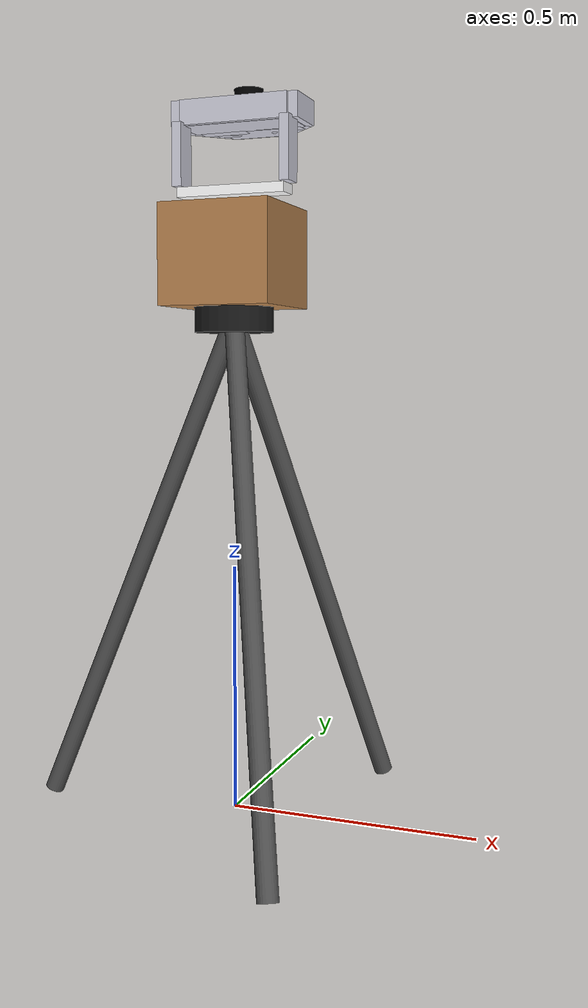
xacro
<?xml version="1.0"?>
<robot name="motor_test" xmlns:xacro="http://www.ros.org/wiki/xacro">

  <!-- Tripod -->
  <link name="world"/>

  <link name="tripod_hub">
    <visual>
      <geometry>
        <cylinder radius="0.08" length="0.05"/>
      </geometry>
      <material name="black_matte">
        <color rgba="0.1 0.1 0.1 1.0"/>
      </material>
    </visual>
    <collision>
      <geometry>
        <cylinder radius="0.08" length="0.05"/>
      </geometry>
    </collision>
    <inertial>
      <mass value="2.0"/>
      <inertia ixx="0.01" ixy="0" ixz="0" iyy="0.01" iyz="0" izz="0.01"/>
    </inertial>
  </link>

  <joint name="world_to_hub" type="fixed">
    <parent link="world"/>
    <child link="tripod_hub"/>
    <origin xyz="0 0 1.0" rpy="0 0 0"/>
  </joint>

  <xacro:macro name="tripod_leg" params="suffix yaw_angle">
    <link name="leg_${suffix}">
      <visual>
        <origin xyz="0 0 -0.55" rpy="0 0 0"/>
        <geometry>
          <cylinder radius="0.02" length="1.1"/>
        </geometry>
        <material name="tripod_gray">
          <color rgba="0.3 0.3 0.3 1.0"/>
        </material>
      </visual>
      <collision>
        <origin xyz="0 0 -0.55" rpy="0 0 0"/>
        <geometry>
          <cylinder radius="0.02" length="1.1"/>
        </geometry>
      </collision>
      <inertial>
        <mass value="1.0"/>
        <inertia ixx="0.1" ixy="0" ixz="0" iyy="0.1" iyz="0" izz="0.001"/>
      </inertial>
    </link>

    <joint name="hub_to_leg_${suffix}" type="fixed">
      <parent link="tripod_hub"/>
      <child link="leg_${suffix}"/>
      <origin xyz="0 0 0" rpy="0 0.4 ${yaw_angle}"/>
    </joint>
  </xacro:macro>

  <xacro:tripod_leg suffix="1" yaw_angle="0.0"/>
  <xacro:tripod_leg suffix="2" yaw_angle="2.0944"/>
  <xacro:tripod_leg suffix="3" yaw_angle="4.1888"/>

  <joint name="tripod_to_base" type="fixed">
    <parent link="tripod_hub"/>
    <child link="base_link"/>
    <origin xyz="0 0 0.125" rpy="0 0 0"/>
  </joint>

  <!-- Base box -->
  <link name="base_link">
    <inertial>
      <origin xyz="0 0 0" rpy="0 0 0"/>
      <mass value="10.0"/>
      <inertia ixx="0.5" ixy="0" ixz="0" iyy="0.5" iyz="0" izz="0.5"/>
    </inertial>

    <visual>
      <geometry>
        <box size="0.2286 0.2286 0.2"/> <!-- 9x9 inches -->
      </geometry>
      <origin xyz="0 0 0" rpy="0 0 0"/>
      <material name="wood">
        <color rgba="0.7 0.5 0.3 1.0"/>
      </material>
    </visual>

    <collision>
      <geometry>
        <box size="0.2286 0.2286 0.2"/>
      </geometry>
      <origin xyz="0 0 0" rpy="0 0 0"/>
    </collision>
  </link>

  <!-- Rotating horizontal bar -->
  <link name="bar_link">
    <inertial>
      <origin xyz="0 0 0" rpy="0 0 0"/>
      <mass value="1.0"/>
      <inertia ixx="0.01" ixy="0" ixz="0" iyy="0.01" iyz="0" izz="0.01"/>
    </inertial>
    <visual>
      <geometry>
        <box size="0.2286 0.05 0.02"/>
      </geometry>
      <origin xyz="0 0 0" rpy="0 0 0"/>
      <material name="white">
        <color rgba="1 1 1 1"/>
      </material>
    </visual>
  </link>

  <!-- Revolute joint connecting base to bar -->
  <joint name="base_to_bar" type="revolute">
    <parent link="base_link"/>
    <child link="bar_link"/>
    <origin xyz="0 0 0.13" rpy="0 0 0"/>
    <axis xyz="0 0 1"/>
    <limit lower="-3.14" upper="3.14" effort="500" velocity="1.0"/>
  </joint>

  <!--      LEFT vertical bar          -->
  <link name="left_vertical_bar">
    <inertial>
      <origin xyz="0 0 0" rpy="0 0 0"/>
      <mass value="0.5"/>
      <inertia ixx="0.001" ixy="0" ixz="0" iyy="0.001" iyz="0" izz="0.001"/>
    </inertial>
    <visual>
      <geometry>
        <box size="0.02 0.05 0.127"/>  <!-- width, depth, height -->
      </geometry>
      <origin xyz="0 0 0" rpy="0 0 0"/>
      <material name="metal_gray">
        <color rgba="0.8 0.8 0.85 1.0"/>
      </material>
    </visual>
  </link>

  <joint name="bar_to_left_vertical" type="fixed">
    <parent link="bar_link"/>
    <child link="left_vertical_bar"/>
    <!-- Position at left end of the bar (x = -0.125), bar is 0.02 m thick in z -->
    <origin xyz="-0.1143 0 0.076" rpy="0 0 0"/>
  </joint>

  <!--      RIGHT vertical bar         -->
  <link name="right_vertical_bar">
    <inertial>
      <origin xyz="0 0 0" rpy="0 0 0"/>
      <mass value="0.5"/>
      <inertia ixx="0.001" ixy="0" ixz="0" iyy="0.001" iyz="0" izz="0.001"/>
    </inertial>
    <visual>
      <geometry>
        <box size="0.02 0.05 0.127"/>
      </geometry>
      <origin xyz="0 0 0" rpy="0 0 0"/>
      <material name="metal_gray">
        <color rgba="0.8 0.8 0.85 1.0"/>
      </material>
    </visual>
  </link>

  <joint name="bar_to_right_vertical" type="fixed">
    <parent link="bar_link"/>
    <child link="right_vertical_bar"/>
    <!-- Position at right end of the bar (x = +0.125) -->
    <origin xyz="0.1143 0 0.076" rpy="0 0 0"/>
  </joint>

  <link name="sheet">
    <inertial>
      <origin xyz="0 0 0" rpy="0 0 0"/>
      <mass value="0.2"/>
      <inertia ixx="0.0001" ixy="0" ixz="0" iyy="0.0001" iyz="0" izz="0.0001"/>
    </inertial>
    <visual>
      <origin xyz="0 0.045 0.02" rpy="0 0 0"/>
      <geometry><box size="0.24 0.09 0.002"/></geometry>
      <material name="metal_gray">
        <color rgba="0.8 0.8 0.85 1.0"/>
      </material>
    </visual>

    <visual>
      <origin xyz="0 0.125 0.02" rpy="0 0 0"/>
      <geometry><box size="0.13 0.07 0.002"/></geometry>
      <material name="metal_gray"/>
    </visual>

    <!-- Right side triangle -->
    <visual>
      <origin xyz="-0.06 0.125 0.02" rpy="0 0 0"/>
      <geometry><box size="0.05 0.02 0.002"/></geometry>
      <material name="metal_gray"/>
    </visual>

    <visual>
      <origin xyz="-0.06 0.1 0.02" rpy="0 0 0"/>
      <geometry><box size="0.1 0.03 0.002"/></geometry>
      <material name="metal_gray"/>
    </visual>

    <!-- Left side triangle -->
    <visual>
      <origin xyz="0.06 0.125 0.02" rpy="0 0 0"/>
      <geometry><box size="0.05 0.02 0.002"/></geometry>
      <material name="metal_gray"/>
    </visual>

    <visual>
      <origin xyz="0.06 0.1 0.02" rpy="0 0 0"/>
      <geometry><box size="0.1 0.03 0.002"/></geometry>
      <material name="metal_gray"/>
    </visual>
  </link>

  <joint name="sheet_to_semi_octagon" type="fixed">
    <parent link="semi_octagon"/>
    <child link="sheet"/>
    <origin xyz="0 0 -0.045" rpy="0 0 0"/>
  </joint>

  <!-- Semi-Octagon -->

  <!-- Revolute joint: bar_link -> semi_octagon (allows the semi-octagon to pitch up/down) -->
  <joint name="bar_to_semi_octagon" type="revolute">
    <parent link="bar_link"/>
    <child link="semi_octagon"/>
    <origin xyz="0 0 0.16" rpy="0 0 0"/>
    <dynamics damping="1.0" friction="1.0"/>
    <!-- pitch axis (rotate up/down) -->
    <axis xyz="1 0 0"/>
    <limit lower="-1.57" upper="1.57" effort="500" velocity="1.0"/>
  </joint>

  <!-- Semi-octagon link (made from 6 thin plates) -->
  <link name="semi_octagon">
    <!-- inertial (simple placeholder; tune mass/inertia for physics accuracy) -->
    <inertial>
      <origin xyz="0 0 0" rpy="0 0 0"/>
      <mass value="0.5"/>
      <inertia ixx="0.001" ixy="0" ixz="0" iyy="0.001" iyz="0" izz="0.001"/>
    </inertial>

    <!-- 1) Long base side (centered) -->
    <visual>
      <origin xyz="0 0 0" rpy="0 0 0"/>
      <!-- size: length along X = distance between vertical bars (0.25), small thickness in Z -->
      <geometry><box size="0.2286 0.02 0.05"/></geometry>
      <material name="metal_gray"><color rgba="0.8 0.8 0.85 1.0"/></material>
    </visual>

    <!-- 2) Center top full-length side -->
    <visual>
      <origin xyz="0 0.158 0" rpy="0 0 0"/>
      <geometry><box size="0.12 0.02 0.05"/></geometry>
      <material name="metal_gray"/>
    </visual>

    <!-- 3) Left full-length side (slanted) -->
    <visual>
      <!-- moved left and slightly up, rotated ~30 degrees around Z to create an angled face -->
      <origin xyz="-0.09 0.124 0" rpy="0 0 0.785398"/> <!-- 45deg in radians -->
      <geometry><box size="0.0946658 0.02 0.05"/></geometry>
      <material name="metal_gray"/>
    </visual>

    <!-- 4) Right full-length side (slanted) -->
    <visual>
      <origin xyz="0.09 0.124 0" rpy="0 0 -0.785398"/>
      <geometry><box size="0.0946658 0.02 0.05"/></geometry>
      <material name="metal_gray"/>
    </visual>

    <!-- 5) Left half-length side (near left end) -->
    <visual>
      <!-- short plate near left end, angled more (45deg) -->
      <origin xyz="-0.125 0.045 0" rpy="0 0 1.57079633"/> <!-- 90deg -->
      <geometry><box size="0.1 0.02 0.05"/></geometry>
      <material name="metal_gray"/>
    </visual>

    <!-- 6) Right half-length side (near right end) -->
    <visual>
      <origin xyz="0.125 0.045 0" rpy="0 0 -1.57079633"/>
      <geometry><box size="0.1 0.02 0.05"/></geometry>
      <material name="metal_gray"/>
    </visual>

    <!-- (optional) simple collision: one box covering the whole semi-octagon footprint -->
    <collision>
      <origin xyz="0 0 0.03" rpy="0 0 0"/>
      <geometry><box size="0.28 0.04 0.10"/></geometry>
    </collision>
  </link>

  <!-- LiDAR -->
  <link name="lidar_link">
    <inertial>
      <origin xyz="0 0 0" rpy="0 0 0"/>
      <mass value="0.1"/>
      <inertia ixx="0.0001" ixy="0" ixz="0" iyy="0.0001" iyz="0" izz="0.0001"/>
    </inertial>

    <visual>
      <origin xyz="0 0 0" rpy="0 0 0"/>
      <geometry>
        <cylinder radius="0.03" length="0.05"/>
      </geometry>
      <material name="black">
        <color rgba="0 0 0 1"/>
      </material>
    </visual>

    <collision>
      <origin xyz="0 0 0" rpy="0 0 0"/>
      <geometry>
        <cylinder radius="0.03" length="0.05"/>
      </geometry>
    </collision>
  </link>

  <joint name="semi_octagon_to_lidar" type="fixed">
    <parent link="semi_octagon"/>
    <child link="lidar_link"/>
    <origin xyz="0 0.08 0.03" rpy="0 0 1.5708"/> <!-- 1.5708 = 90 Deg -->
  </joint>

  <gazebo reference="lidar_link">
    <sensor name="lidar" type="gpu_ray">
      <pose>0 0 0 0 0 0</pose>
      <always_on>true</always_on>
      <visualize>true</visualize>
      <update_rate>10</update_rate>
      <topic>scan</topic>
      <ray>
        <scan>
          <horizontal>
            <samples>720</samples>
            <resolution>1</resolution>
            <min_angle>-2.35619</min_angle>
            <max_angle>2.35619</max_angle>
          </horizontal>
        </scan>
        <range>
          <min>0.1</min>
          <max>50.0</max>
          <resolution>0.01</resolution>
        </range>
      </ray>
    </sensor>
  </gazebo>

  <!-- Motors -->
  <gazebo>
    <plugin filename="gz-sim-joint-position-controller-system"
            name="gz::sim::systems::JointPositionController">
      <joint_name>bar_to_semi_octagon</joint_name>
      <topic>/model/motor_test_robot/joint/bar_to_semi_octagon/cmd_pos</topic>
      <p_gain>100.0</p_gain>
      <i_gain>0.1</i_gain>
      <d_gain>1.0</d_gain>
      <i_max>1</i_max>
      <i_min>-1</i_min>
      <cmd_max>100</cmd_max>
      <cmd_min>-100</cmd_min>
    </plugin>
  </gazebo>

  <gazebo>
    <plugin filename="gz-sim-joint-position-controller-system"
            name="gz::sim::systems::JointPositionController">
      <joint_name>base_to_bar</joint_name>
      <topic>/model/motor_test_robot/joint/base_to_bar/cmd_pos</topic>
      <p_gain>100.0</p_gain>
      <i_gain>0.1</i_gain>
      <d_gain>5.0</d_gain>
      <i_max>1</i_max>
      <i_min>-1</i_min>
      <cmd_max>100</cmd_max>
      <cmd_min>-100</cmd_min>
    </plugin>
  </gazebo>

</robot>
